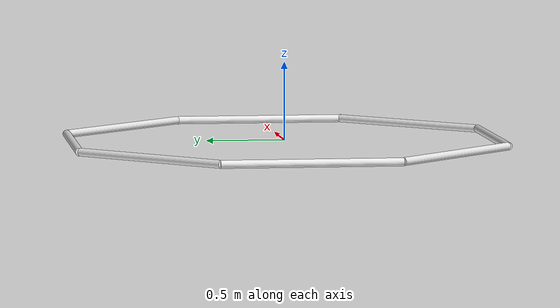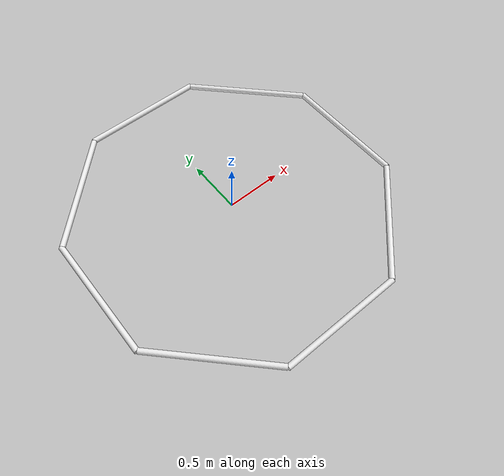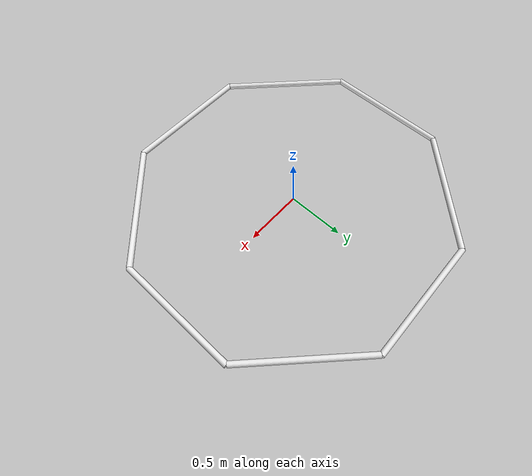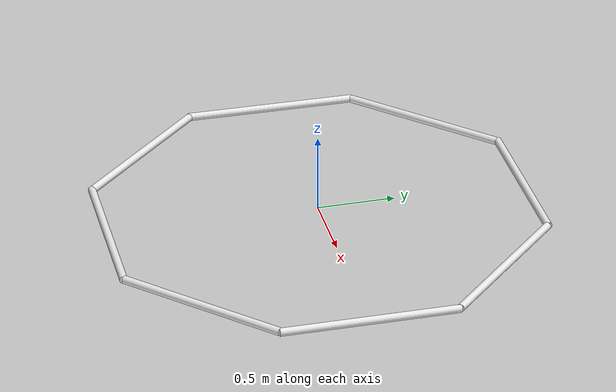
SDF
<?xml version='1.0'?>
<sdf version='1.5'>

  <model name='octagon'>
    <pose>0 0 0 0 0 0</pose>
    <self_collide> 0 </self_collide>
    <static> 1</static>

    <link name='rod1'>
        <pose>0 1.35 0 0 1.5707 0</pose>
        <visual name='rod1_vis'>
          <geometry>
            <cylinder>
              <radius>0.0254</radius>
              <length>1.118</length>
            </cylinder>
          </geometry>
        <material>
          <script>
            <uri>file://media/materials/scripts/gazebo.material</uri>
            <name>Gazebo/White</name>
          </script>
          <diffuse>0.3 0.3 0.3 1</diffuse>
        </material>
        </visual>
        <collision name='rod1_collide'>
          <pose>1.35 0 0 0 1.5707 0</pose>
          <geometry>
            <cylinder>
              <radius>0.0254</radius>
              <length>1.118</length>
            </cylinder>
          </geometry>
        </collision>
    </link>

    <link name='rod2'>
        <pose>0 -1.35 0 0 1.5707 0</pose>
        <visual name='rod2_vis'>
          <geometry>
            <cylinder>
              <radius>0.0254</radius>
              <length>1.118</length>
            </cylinder>
          </geometry>
        <material>
          <script>
            <uri>file://media/materials/scripts/gazebo.material</uri>
            <name>Gazebo/White</name>
          </script>
          <diffuse>0.3 0.3 0.3 1</diffuse>
        </material>
        </visual>
        <collision name='rod2_collide'>
          <pose>-1.35 0 0 0 1.5707 0</pose>
          <geometry>
            <cylinder>
              <radius>0.0254</radius>
              <length>1.118</length>
            </cylinder>
          </geometry>
        </collision>
    </link>

    <link name='rod3'>
        <pose>1.35 0 0 0 1.5707 1.5707</pose>
        <visual name='rod3_vis'>
          <geometry>
            <cylinder>
              <radius>0.0254</radius>
              <length>1.118</length>
            </cylinder>
          </geometry>
        <material>
          <script>
            <uri>file://media/materials/scripts/gazebo.material</uri>
            <name>Gazebo/White</name>
          </script>
          <diffuse>0.3 0.3 0.3 1</diffuse>
        </material>
        </visual>
        <collision name='rod3_collide'>
          <pose>0 1.35 0 0 1.5707 1.5707</pose>
          <geometry>
            <cylinder>
              <radius>0.0254</radius>
              <length>1.118</length>
            </cylinder>
          </geometry>
        </collision>
    </link>

    <link name='rod4'>
        <pose>-1.35 0 0 0 1.5707 1.5707</pose>
        <visual name='rod4_vis'>
          <geometry>
            <cylinder>
              <radius>0.0254</radius>
              <length>1.118</length>
            </cylinder>
          </geometry>
        <material>
          <script>
            <uri>file://media/materials/scripts/gazebo.material</uri>
            <name>Gazebo/White</name>
          </script>
          <diffuse>0.3 0.3 0.3 1</diffuse>
        </material>
        </visual>
        <collision name='rod4_collide'>
          <pose>0 -1.35 0 0 1.5707 1.5707</pose>
          <geometry>
            <cylinder>
              <radius>0.0254</radius>
              <length>1.118</length>
            </cylinder>
          </geometry>
        </collision>
    </link>

    <link name='rod5'>
        <pose>0.95 0.95 0 0 1.5707 2.356</pose>
        <visual name='rod5_vis'>
          <geometry>
            <cylinder>
              <radius>0.0254</radius>
              <length>1.118</length>
            </cylinder>
          </geometry>
        <material>
          <script>
            <uri>file://media/materials/scripts/gazebo.material</uri>
            <name>Gazebo/White</name>
          </script>
          <diffuse>0.3 0.3 0.3 1</diffuse>
        </material>
        </visual>
        <collision name='rod5_collide'>
          <pose>0.95 0.95 0 0 1.5707 2.356</pose>
          <geometry>
            <cylinder>
              <radius>0.0254</radius>
              <length>1.118</length>
            </cylinder>
          </geometry>
        </collision>
    </link>

    <link name='rod6'>
        <pose>-0.95 0.95 0 0 1.5707 -2.356</pose>
        <visual name='rod6_vis'>
          <geometry>
            <cylinder>
              <radius>0.0254</radius>
              <length>1.118</length>
            </cylinder>
          </geometry>
        <material>
          <script>
            <uri>file://media/materials/scripts/gazebo.material</uri>
            <name>Gazebo/White</name>
          </script>
          <diffuse>0.3 0.3 0.3 1</diffuse>
        </material>
        </visual>
        <collision name='rod6_collide'>
          <pose>-0.95 0.95 0 0 1.5707 -2.356</pose>
          <geometry>
            <cylinder>
              <radius>0.0254</radius>
              <length>1.118</length>
            </cylinder>
          </geometry>
        </collision>
    </link>

    <link name='rod7'>
        <pose>-0.95 -0.95 0 0 1.5707 2.356</pose>
        <visual name='rod7_vis'>
          <geometry>
            <cylinder>
              <radius>0.0254</radius>
              <length>1.118</length>
            </cylinder>
          </geometry>
        <material>
          <script>
            <uri>file://media/materials/scripts/gazebo.material</uri>
            <name>Gazebo/White</name>
          </script>
          <diffuse>0.3 0.3 0.3 1</diffuse>
        </material>
        </visual>
        <collision name='rod7_collide'>
          <pose>-0.95 -0.95 0 0 1.5707 2.356</pose>
          <geometry>
            <cylinder>
              <radius>0.0254</radius>
              <length>1.118</length>
            </cylinder>
          </geometry>
        </collision>
    </link>

    <link name='rod8'>
        <pose>0.95 -0.95 0 0 1.5707 -2.356</pose>
        <visual name='rod8_vis'>
          <geometry>
            <cylinder>
              <radius>0.0254</radius>
              <length>1.118</length>
            </cylinder>
          </geometry>
        <material>
          <script>
            <uri>file://media/materials/scripts/gazebo.material</uri>
            <name>Gazebo/White</name>
          </script>
          <diffuse>0.3 0.3 0.3 1</diffuse>
        </material>
        </visual>
        <collision name='rod8_collide'>
          <pose>0.95 -0.95 0 0 1.5707 -2.356</pose>
          <geometry>
            <cylinder>
              <radius>0.0254</radius>
              <length>1.118</length>
            </cylinder>
          </geometry>
        </collision>
    </link>
  </model>
</sdf>
